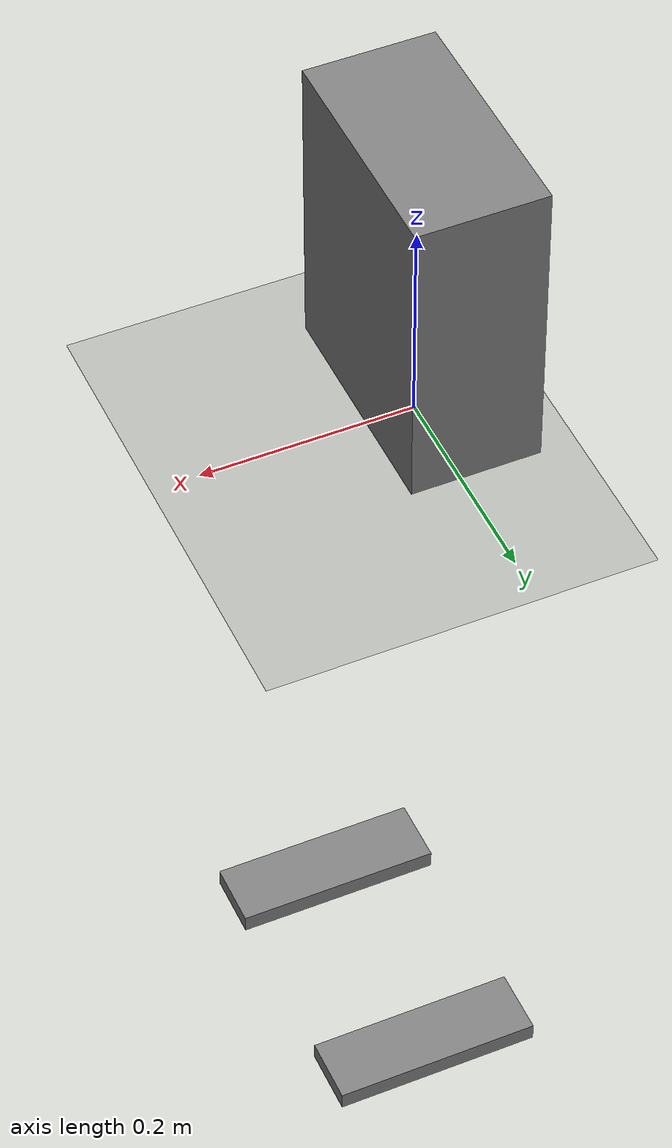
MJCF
<mujoco model="MuJoCo Model">
  <compiler angle="radian"/>

  <option timestep="0.01" gravity="0 0 -9.81" iterations="20" ls_iterations="10"/>

  <default>
    <geom friction="1 0.5 0.001" solref="0.01"/>
  </default>

  <worldbody>
    <geom name="plane_3" size="5 5 5" type="plane" contype="16" conaffinity="2147483631" friction="0.75 0.375 0.00075"/>
    <body name="/g1/pelvis">
      <inertial pos="0 0 -0.07605" quat="1 0 -0.000405289 0" mass="2.86" diaginertia="0.00791431 0.0069837 0.0059404"/>
      <joint name="joint_1" type="free" limited="false" actuatorfrclimited="false"/>
      <body name="/g1/left_hip_pitch_link" pos="0 0.06445 -0.1027" quat="0.984807 0 -0.17365 0">
        <inertial pos="0.001962 0.049392 -0.000941" quat="0.420735 0.907025 -0.0155675 -0.00670647" mass="1.299" diaginertia="0.00138785 0.000955478 0.00086947"/>
        <joint name="/g1/pelvis/left_hip_pitch_joint" pos="0 0 0" axis="0 1 0" limited="true" range="-2.35 3.05" armature="0.1"/>
        <body name="/g1/left_hip_roll_link" pos="0 0.0523 0">
          <inertial pos="0.024757 -0.001036 -0.086323" quat="0.977498 -0.00692637 0.210181 0.0165269" mass="1.446" diaginertia="0.00244106 0.00230425 0.00142899"/>
          <joint name="/g1/left_hip_pitch_link/left_hip_roll_joint" pos="0 0 0" axis="1 0 0" limited="true" range="-0.26 2.53" armature="0.1"/>
          <body name="/g1/left_hip_yaw_link" pos="0.01966 -0.0012139 -0.1241">
            <inertial pos="-0.053554 -0.011477 -0.14067" quat="0.645098 0.15885 0.202109 0.71956" mass="2.052" diaginertia="0.0114476 0.0107868 0.00214501"/>
            <joint name="/g1/left_hip_roll_link/left_hip_yaw_joint" pos="0 0 0" axis="0 0 1" limited="true" range="-2.75 2.75" armature="0.1"/>
            <body name="/g1/left_knee_link" pos="-0.078292 -0.0017335 -0.177225" quat="0.967714 0 0.252052 0">
              <inertial pos="0.005505 0.006534 -0.116629" quat="0.799234 -0.0128893 0.0354278 0.599837" mass="2.252" diaginertia="0.0127418 0.0124382 0.00192524"/>
              <joint name="/g1/left_hip_yaw_link/left_knee_joint" pos="0 0 0" axis="0 1 0" limited="true" range="-0.33489 2.5449" armature="0.1"/>
              <body name="/g1/left_ankle_pitch_link" pos="0 0.0040687 -0.30007" quat="0.99678 0 -0.0801788 0">
                <inertial pos="-0.007269 0 0.011137" quat="0.603053 0.369225 0.369225 0.603053" mass="0.074" diaginertia="1.89e-05 1.40805e-05 6.9195e-06"/>
                <joint name="/g1/left_knee_link/left_ankle_pitch_joint" pos="0 0 0" axis="0 1 0" limited="true" range="-0.68 0.73" armature="0.1"/>
                <body name="/g1/left_ankle_roll_link" pos="0 0 -0.017558">
                  <inertial pos="0.024762 2e-05 -0.012526" quat="0.000771336 0.734476 0.000921293 0.678634" mass="0.391" diaginertia="0.00110394 0.0010657 0.000149255"/>
                  <joint name="/g1/left_ankle_pitch_link/left_ankle_roll_joint" pos="0 0 0" axis="1 0 0" limited="true" range="-0.2618 0.2618" armature="0.1"/>
                  <geom name="box_0" size="0.101555 0.0327346 0.00925394" pos="0.035917 0 -0.0251701" type="box" contype="2" conaffinity="2147483645" friction="0.75 0.375 0.00075"/>
                </body>
              </body>
            </body>
          </body>
        </body>
      </body>
      <body name="/g1/pelvis_contour_link">
        <inertial pos="0 0 0" mass="1e-06" diaginertia="1e-05 1e-05 1e-05"/>
      </body>
      <body name="/g1/right_hip_pitch_link" pos="0 -0.06445 -0.1027" quat="0.984807 0 -0.17365 0">
        <inertial pos="0.001962 -0.049392 -0.000941" quat="0.907025 0.420735 0.00670647 0.0155675" mass="1.299" diaginertia="0.00138785 0.000955478 0.00086947"/>
        <joint name="/g1/pelvis/right_hip_pitch_joint" pos="0 0 0" axis="0 1 0" limited="true" range="-2.35 3.05" armature="0.1"/>
        <body name="/g1/right_hip_roll_link" pos="0 -0.0523 0">
          <inertial pos="0.024757 0.001036 -0.086323" quat="0.977498 0.00692637 0.210181 -0.0165269" mass="1.446" diaginertia="0.00244106 0.00230425 0.00142899"/>
          <joint name="/g1/right_hip_pitch_link/right_hip_roll_joint" pos="0 0 0" axis="1 0 0" limited="true" range="-2.53 0.26" armature="0.1"/>
          <body name="/g1/right_hip_yaw_link" pos="0.01966 0.0012139 -0.1241">
            <inertial pos="-0.053554 0.011477 -0.14067" quat="0.71956 0.202109 0.15885 0.645098" mass="2.052" diaginertia="0.0114476 0.0107868 0.00214501"/>
            <joint name="/g1/right_hip_roll_link/right_hip_yaw_joint" pos="0 0 0" axis="0 0 1" limited="true" range="-2.75 2.75" armature="0.1"/>
            <body name="/g1/right_knee_link" pos="-0.078292 0.0017335 -0.177225" quat="0.967714 0 0.252052 0">
              <inertial pos="0.005505 -0.006534 -0.116629" quat="0.599837 0.0354278 -0.0128893 0.799234" mass="2.252" diaginertia="0.0127418 0.0124382 0.00192524"/>
              <joint name="/g1/right_hip_yaw_link/right_knee_joint" pos="0 0 0" axis="0 1 0" limited="true" range="-0.33489 2.5449" armature="0.1"/>
              <body name="/g1/right_ankle_pitch_link" pos="0 -0.0040687 -0.30007" quat="0.99678 0 -0.0801788 0">
                <inertial pos="-0.007269 0 0.011137" quat="0.603053 0.369225 0.369225 0.603053" mass="0.074" diaginertia="1.89e-05 1.40805e-05 6.9195e-06"/>
                <joint name="/g1/right_knee_link/right_ankle_pitch_joint" pos="0 0 0" axis="0 1 0" limited="true" range="-0.68 0.73" armature="0.1"/>
                <body name="/g1/right_ankle_roll_link" pos="0 0 -0.017558">
                  <inertial pos="0.024762 -2e-05 -0.012526" quat="-0.000771336 0.734476 -0.000921293 0.678634" mass="0.391" diaginertia="0.00110394 0.0010657 0.000149255"/>
                  <joint name="/g1/right_ankle_pitch_link/right_ankle_roll_joint" pos="0 0 0" axis="1 0 0" limited="true" range="-0.2618 0.2618" armature="0.1"/>
                  <geom name="box_1" size="0.101555 0.0327346 0.00925394" pos="0.035917 0 -0.0251701" type="box" contype="4" conaffinity="2147483643" friction="0.75 0.375 0.00075"/>
                </body>
              </body>
            </body>
          </body>
        </body>
      </body>
      <body name="/g1/torso_link">
        <inertial pos="0.00197122 0.00266902 0.169365" quat="0.999768 0.0170278 -0.0129458 -0.00253532" mass="6.3396" diaginertia="0.0603895 0.0435628 0.03337"/>
        <joint name="/g1/pelvis/torso_joint" pos="0 0 0" axis="0 0 1" limited="true" range="-2.618 2.618" armature="0.1"/>
        <geom name="box_2" size="0.144879 0.110109 0.06" pos="-0.00620253 0 0.164763" quat="0.707107 0 -0.707107 0" type="box" contype="8" conaffinity="2147483639" friction="0.75 0.375 0.00075"/>
        <body name="/g1/head_link">
          <inertial pos="0.00138067 0.000284309 0.420342" quat="0.721034 -0.0299186 -0.0339443 0.691421" mass="1.17977" diaginertia="0.00552903 0.00546359 0.00162239"/>
        </body>
        <body name="/g1/imu_link" pos="-0.0423387 0.00166 0.152067">
          <inertial pos="0 0 0" mass="1e-06" diaginertia="1e-05 1e-05 1e-05"/>
        </body>
        <body name="/g1/left_shoulder_pitch_link" pos="-0.0025 0.10396 0.25928" quat="0.990268 0.139172 0 0">
          <inertial pos="-0.001431 0.048811 0.001304" quat="0.786417 0.588396 -0.180543 0.0523637" mass="0.713" diaginertia="0.000466421 0.000440181 0.000410999"/>
          <joint name="/g1/torso_link/left_shoulder_pitch_joint" pos="0 0 0" axis="0 1 0" limited="true" range="-2.9671 2.7925" armature="0.1"/>
          <body name="/g1/left_shoulder_roll_link" pos="0 0.052 0" quat="0.990268 -0.139172 0 0">
            <inertial pos="-0.003415 0.006955 -0.064598" quat="0.70683 0.0105364 0.00575207 0.707282" mass="0.642" diaginertia="0.000683515 0.000616029 0.000372857"/>
            <joint name="/g1/left_shoulder_pitch_link/left_shoulder_roll_joint" pos="0 0 0" axis="1 0 0" limited="true" range="-1.5882 2.2515" armature="0.1"/>
            <body name="/g1/left_shoulder_yaw_link" pos="-0.00354 0.0062424 -0.1032">
              <inertial pos="0.000375 -0.00444 -0.072374" quat="0.903833 -0.0374183 0.00985487 0.426131" mass="0.713" diaginertia="0.000977873 0.000964661 0.000379065"/>
              <joint name="/g1/left_shoulder_roll_link/left_shoulder_yaw_joint" pos="0 0 0" axis="0 0 1" limited="true" range="-2.618 2.618" armature="0.1"/>
              <body name="/g1/left_elbow_pitch_link" pos="0 0.00189 -0.0855">
                <inertial pos="0.064497 0.002873 0" quat="0.582347 0.582495 0.400893 0.401069" mass="0.601" diaginertia="0.00049549 0.0004712 0.00025371"/>
                <joint name="/g1/left_shoulder_yaw_link/left_elbow_pitch_joint" pos="0 0 0" axis="0 1 0" limited="true" range="-0.2268 3.4208" armature="0.1"/>
                <body name="/g1/left_elbow_roll_link" pos="0.1 0 0">
                  <inertial pos="0.081811 0.001454 0.001" quat="0.459015 0.526978 0.453199 0.553363" mass="0.227" diaginertia="0.000977534 0.000968326 0.00010804"/>
                  <joint name="/g1/left_elbow_pitch_link/left_elbow_roll_joint" pos="0 0 0" axis="1 0 0" limited="true" range="-2.0943 2.0943" armature="0.1"/>
                  <body name="/g1/left_palm_link" pos="0.12 0 0" quat="0.707107 0 0.707107 0">
                    <inertial pos="0.0557842 0.00148509 -0.000326701" quat="0.48386 0.491643 0.516022 0.507826" mass="0.28126" diaginertia="0.000311158 0.000189397 0.000176062"/>
                    <body name="/g1/left_five_link" pos="0.02395 0.004 0.085" quat="0.707107 0 -0.707107 0">
                      <inertial pos="0.0362561 -0.0015725 0.000269899" quat="0.540443 0.459072 0.5397 0.45376" mass="0.0488469" diaginertia="8.91743e-06 8.64874e-06 3.8319e-06"/>
                      <joint name="/g1/left_palm_link/left_five_joint" pos="0 0 0" axis="0 0 1" limited="true" range="-1.84 0.3" armature="0.1"/>
                      <body name="/g1/left_six_link" pos="0.0471 -0.0036 0">
                        <inertial pos="0.0237591 0.00135257 0.000119669" quat="0.478926 0.48905 0.526348 0.504399" mass="0.0138583" diaginertia="2.55338e-06 2.04399e-06 9.3995e-07"/>
                        <joint name="/g1/left_five_link/left_six_joint" pos="0 0 0" axis="0 0 1" limited="true" range="-1.84 0" armature="0.1"/>
                      </body>
                    </body>
                    <body name="/g1/left_three_link" pos="-0.02395 0.004 0.085" quat="0.707107 0 -0.707107 0">
                      <inertial pos="0.0362561 -0.0015725 0.000269899" quat="0.540443 0.459072 0.5397 0.45376" mass="0.0488469" diaginertia="8.91743e-06 8.64874e-06 3.8319e-06"/>
                      <joint name="/g1/left_palm_link/left_three_joint" pos="0 0 0" axis="0 0 1" limited="true" range="-1.84 0.3" armature="0.1"/>
                      <body name="/g1/left_four_link" pos="0.0471 -0.0036 0">
                        <inertial pos="0.0237591 0.00135257 0.000119669" quat="0.478926 0.48905 0.526348 0.504399" mass="0.0138583" diaginertia="2.55338e-06 2.04399e-06 9.3995e-07"/>
                        <joint name="/g1/left_three_link/left_four_joint" pos="0 0 0" axis="0 0 1" limited="true" range="-1.84 0" armature="0.1"/>
                      </body>
                    </body>
                    <body name="/g1/left_zero_link" pos="5.96046e-09 0 0.05" quat="0.707107 0 -0.707107 0">
                      <inertial pos="-0.0260466 -0.00877511 1.08605e-05" quat="0.59241 0.381376 -0.592953 0.389884" mass="0.0509893" diaginertia="8.68048e-06 7.23365e-06 4.58058e-06"/>
                      <joint name="/g1/left_palm_link/left_zero_joint" pos="0 0 0" axis="0 1 0" limited="true" range="-0.523598 0.523598" armature="0.1"/>
                      <body name="/g1/left_one_link" pos="-0.026525 -0.0188 -5e-05">
                        <inertial pos="-0.00181538 -0.0327057 -0.000185871" quat="0.701646 0.698199 0.081782 -0.116288" mass="0.047762" diaginertia="8.03052e-06 7.8455e-06 3.65282e-06"/>
                        <joint name="/g1/left_zero_link/left_one_joint" pos="0 0 0" axis="0 0 1" limited="true" range="-1 1.2" armature="0.1"/>
                        <body name="/g1/left_two_link" pos="0 -0.0431 0">
                          <inertial pos="-0.00135257 -0.0237591 -0.000119669" quat="0.717995 0.695316 -0.0180122 -0.0263741" mass="0.0138583" diaginertia="2.55338e-06 2.04399e-06 9.3995e-07"/>
                          <joint name="/g1/left_one_link/left_two_joint" pos="0 0 0" axis="0 0 1" limited="true" range="0 1.84" armature="0.1"/>
                        </body>
                      </body>
                    </body>
                  </body>
                </body>
              </body>
            </body>
          </body>
        </body>
        <body name="/g1/logo_link">
          <inertial pos="-0.00306556 5.62503e-05 0.245265" quat="0.00498408 0.708708 -0.00396294 0.705473" mass="0.001" diaginertia="6.88624e-06 6.44935e-06 8.95487e-07"/>
        </body>
        <body name="/g1/right_shoulder_pitch_link" pos="-0.0025 -0.10396 0.25928" quat="0.990268 -0.139172 0 0">
          <inertial pos="-0.001431 -0.048811 0.001304" quat="0.588396 0.786417 -0.0523637 0.180543" mass="0.713" diaginertia="0.000466421 0.000440181 0.000410999"/>
          <joint name="/g1/torso_link/right_shoulder_pitch_joint" pos="0 0 0" axis="0 1 0" limited="true" range="-2.9671 2.7925" armature="0.1"/>
          <body name="/g1/right_shoulder_roll_link" pos="0 -0.052 0" quat="0.990268 0.139172 0 0">
            <inertial pos="-0.003415 -0.006955 -0.064598" quat="0.707282 0.00575207 0.0105364 0.70683" mass="0.642" diaginertia="0.000683515 0.000616029 0.000372857"/>
            <joint name="/g1/right_shoulder_pitch_link/right_shoulder_roll_joint" pos="0 0 0" axis="1 0 0" limited="true" range="-2.2515 1.5882" armature="0.1"/>
            <body name="/g1/right_shoulder_yaw_link" pos="-0.00354 -0.0062424 -0.1032">
              <inertial pos="0.000375 0.00444 -0.072374" quat="0.426131 0.00985487 -0.0374183 0.903833" mass="0.713" diaginertia="0.000977873 0.000964661 0.000379065"/>
              <joint name="/g1/right_shoulder_roll_link/right_shoulder_yaw_joint" pos="0 0 0" axis="0 0 1" limited="true" range="-2.618 2.618" armature="0.1"/>
              <body name="/g1/right_elbow_pitch_link" pos="0 -0.00189 -0.0855">
                <inertial pos="0.064497 -0.002873 0" quat="0.401069 0.400893 0.582495 0.582347" mass="0.601" diaginertia="0.00049549 0.0004712 0.00025371"/>
                <joint name="/g1/right_shoulder_yaw_link/right_elbow_pitch_joint" pos="0 0 0" axis="0 1 0" limited="true" range="-0.2268 3.4208" armature="0.1"/>
                <body name="/g1/right_elbow_roll_link" pos="0.1 0 0">
                  <inertial pos="0.081811 -0.001454 0.001" quat="0.553363 0.453199 0.526978 0.459015" mass="0.227" diaginertia="0.000977534 0.000968326 0.00010804"/>
                  <joint name="/g1/right_elbow_pitch_link/right_elbow_roll_joint" pos="0 0 0" axis="1 0 0" limited="true" range="-2.0943 2.0943" armature="0.1"/>
                  <body name="/g1/right_palm_link" pos="0.12 0 0" quat="0.707107 0 0.707107 0">
                    <inertial pos="0.0557842 -0.00148509 -0.000326701" quat="0.507826 0.516022 0.491643 0.48386" mass="0.28126" diaginertia="0.000311158 0.000189397 0.000176062"/>
                    <body name="/g1/right_five_link" pos="0.02395 -0.004 0.085" quat="0.707107 0 -0.707107 0">
                      <inertial pos="0.0362561 0.0015725 0.000269899" quat="0.45376 0.5397 0.459072 0.540443" mass="0.0488469" diaginertia="8.91743e-06 8.64874e-06 3.8319e-06"/>
                      <joint name="/g1/right_palm_link/right_five_joint" pos="0 0 0" axis="0 0 1" limited="true" range="-0.3 1.84" armature="0.1"/>
                      <body name="/g1/right_six_link" pos="0.0471 0.0036 0">
                        <inertial pos="0.0237591 -0.00135257 0.000119669" quat="0.504399 0.526348 0.48905 0.478926" mass="0.0138583" diaginertia="2.55338e-06 2.04399e-06 9.3995e-07"/>
                        <joint name="/g1/right_five_link/right_six_joint" pos="0 0 0" axis="0 0 1" limited="true" range="0 1.84" armature="0.1"/>
                      </body>
                    </body>
                    <body name="/g1/right_three_link" pos="-0.02395 -0.004 0.085" quat="0.707107 0 -0.707107 0">
                      <inertial pos="0.0362561 0.0015725 0.000269899" quat="0.45376 0.5397 0.459072 0.540443" mass="0.0488469" diaginertia="8.91743e-06 8.64874e-06 3.8319e-06"/>
                      <joint name="/g1/right_palm_link/right_three_joint" pos="0 0 0" axis="0 0 1" limited="true" range="-0.3 1.84" armature="0.1"/>
                      <body name="/g1/right_four_link" pos="0.0471 0.0036 0">
                        <inertial pos="0.0237591 -0.00135257 0.000119669" quat="0.504399 0.526348 0.48905 0.478926" mass="0.0138583" diaginertia="2.55338e-06 2.04399e-06 9.3995e-07"/>
                        <joint name="/g1/right_three_link/right_four_joint" pos="0 0 0" axis="0 0 1" limited="true" range="0 1.84" armature="0.1"/>
                      </body>
                    </body>
                    <body name="/g1/right_zero_link" pos="5.96046e-09 0 0.05" quat="0.707107 0 -0.707107 0">
                      <inertial pos="-0.0260466 0.00877511 1.08605e-05" quat="0.381376 0.59241 -0.389884 0.592953" mass="0.0509893" diaginertia="8.68048e-06 7.23365e-06 4.58058e-06"/>
                      <joint name="/g1/right_palm_link/right_zero_joint" pos="0 0 0" axis="0 1 0" limited="true" range="-0.523598 0.523598" armature="0.1"/>
                      <body name="/g1/right_one_link" pos="-0.026525 0.0188 -5e-05">
                        <inertial pos="-0.00181538 0.0327057 -0.000185871" quat="0.698199 0.701646 0.116288 -0.081782" mass="0.047762" diaginertia="8.03052e-06 7.8455e-06 3.65282e-06"/>
                        <joint name="/g1/right_zero_link/right_one_joint" pos="0 0 0" axis="0 0 1" limited="true" range="-1.2 1" armature="0.1"/>
                        <body name="/g1/right_two_link" pos="0 0.0431 0">
                          <inertial pos="-0.00135257 0.0237591 -0.000119669" quat="0.695316 0.717995 0.0263741 0.0180122" mass="0.0138583" diaginertia="2.55338e-06 2.04399e-06 9.3995e-07"/>
                          <joint name="/g1/right_one_link/right_two_joint" pos="0 0 0" axis="0 0 1" limited="true" range="-1.84 0" armature="0.1"/>
                        </body>
                      </body>
                    </body>
                  </body>
                </body>
              </body>
            </body>
          </body>
        </body>
      </body>
    </body>
  </worldbody>

  <actuator>
    <general joint="/g1/pelvis/left_hip_pitch_joint" forcerange="-1000000 1000000" biastype="affine" gainprm="200" biasprm="0 -200 -5"/>
    <general joint="/g1/left_hip_pitch_link/left_hip_roll_joint" forcerange="-1000000 1000000" biastype="affine" gainprm="150" biasprm="0 -150 -5"/>
    <general joint="/g1/left_hip_roll_link/left_hip_yaw_joint" forcerange="-1000000 1000000" biastype="affine" gainprm="150" biasprm="0 -150 -5"/>
    <general joint="/g1/left_hip_yaw_link/left_knee_joint" forcerange="-1000000 1000000" biastype="affine" gainprm="200" biasprm="0 -200 -5"/>
    <general joint="/g1/left_knee_link/left_ankle_pitch_joint" forcerange="-1000000 1000000" biastype="affine" gainprm="20" biasprm="0 -20 -2"/>
    <general joint="/g1/left_ankle_pitch_link/left_ankle_roll_joint" forcerange="-1000000 1000000" biastype="affine" gainprm="20" biasprm="0 -20 -2"/>
    <general joint="/g1/pelvis/right_hip_pitch_joint" forcerange="-1000000 1000000" biastype="affine" gainprm="200" biasprm="0 -200 -5"/>
    <general joint="/g1/right_hip_pitch_link/right_hip_roll_joint" forcerange="-1000000 1000000" biastype="affine" gainprm="150" biasprm="0 -150 -5"/>
    <general joint="/g1/right_hip_roll_link/right_hip_yaw_joint" forcerange="-1000000 1000000" biastype="affine" gainprm="150" biasprm="0 -150 -5"/>
    <general joint="/g1/right_hip_yaw_link/right_knee_joint" forcerange="-1000000 1000000" biastype="affine" gainprm="200" biasprm="0 -200 -5"/>
    <general joint="/g1/right_knee_link/right_ankle_pitch_joint" forcerange="-1000000 1000000" biastype="affine" gainprm="20" biasprm="0 -20 -2"/>
    <general joint="/g1/right_ankle_pitch_link/right_ankle_roll_joint" forcerange="-1000000 1000000" biastype="affine" gainprm="20" biasprm="0 -20 -2"/>
    <general joint="/g1/pelvis/torso_joint" forcerange="-1000000 1000000" biastype="affine" gainprm="200" biasprm="0 -200 -5"/>
    <general joint="/g1/torso_link/left_shoulder_pitch_joint" forcerange="-1000000 1000000" biastype="affine" gainprm="40" biasprm="0 -40 -10"/>
    <general joint="/g1/left_shoulder_pitch_link/left_shoulder_roll_joint" forcerange="-1000000 1000000" biastype="affine" gainprm="40" biasprm="0 -40 -10"/>
    <general joint="/g1/left_shoulder_roll_link/left_shoulder_yaw_joint" forcerange="-1000000 1000000" biastype="affine" gainprm="40" biasprm="0 -40 -10"/>
    <general joint="/g1/left_shoulder_yaw_link/left_elbow_pitch_joint" forcerange="-1000000 1000000" biastype="affine" gainprm="40" biasprm="0 -40 -10"/>
    <general joint="/g1/left_elbow_pitch_link/left_elbow_roll_joint" forcerange="-1000000 1000000" biastype="affine" gainprm="40" biasprm="0 -40 -10"/>
    <general joint="/g1/left_palm_link/left_five_joint" forcerange="-1000000 1000000" biastype="affine" gainprm="40" biasprm="0 -40 -10"/>
    <general joint="/g1/left_five_link/left_six_joint" forcerange="-1000000 1000000" biastype="affine" gainprm="40" biasprm="0 -40 -10"/>
    <general joint="/g1/left_palm_link/left_three_joint" forcerange="-1000000 1000000" biastype="affine" gainprm="40" biasprm="0 -40 -10"/>
    <general joint="/g1/left_three_link/left_four_joint" forcerange="-1000000 1000000" biastype="affine" gainprm="40" biasprm="0 -40 -10"/>
    <general joint="/g1/left_palm_link/left_zero_joint" forcerange="-1000000 1000000" biastype="affine" gainprm="40" biasprm="0 -40 -10"/>
    <general joint="/g1/left_zero_link/left_one_joint" forcerange="-1000000 1000000" biastype="affine" gainprm="40" biasprm="0 -40 -10"/>
    <general joint="/g1/left_one_link/left_two_joint" forcerange="-1000000 1000000" biastype="affine" gainprm="40" biasprm="0 -40 -10"/>
    <general joint="/g1/torso_link/right_shoulder_pitch_joint" forcerange="-1000000 1000000" biastype="affine" gainprm="40" biasprm="0 -40 -10"/>
    <general joint="/g1/right_shoulder_pitch_link/right_shoulder_roll_joint" forcerange="-1000000 1000000" biastype="affine" gainprm="40" biasprm="0 -40 -10"/>
    <general joint="/g1/right_shoulder_roll_link/right_shoulder_yaw_joint" forcerange="-1000000 1000000" biastype="affine" gainprm="40" biasprm="0 -40 -10"/>
    <general joint="/g1/right_shoulder_yaw_link/right_elbow_pitch_joint" forcerange="-1000000 1000000" biastype="affine" gainprm="40" biasprm="0 -40 -10"/>
    <general joint="/g1/right_elbow_pitch_link/right_elbow_roll_joint" forcerange="-1000000 1000000" biastype="affine" gainprm="40" biasprm="0 -40 -10"/>
    <general joint="/g1/right_palm_link/right_five_joint" forcerange="-1000000 1000000" biastype="affine" gainprm="40" biasprm="0 -40 -10"/>
    <general joint="/g1/right_five_link/right_six_joint" forcerange="-1000000 1000000" biastype="affine" gainprm="40" biasprm="0 -40 -10"/>
    <general joint="/g1/right_palm_link/right_three_joint" forcerange="-1000000 1000000" biastype="affine" gainprm="40" biasprm="0 -40 -10"/>
    <general joint="/g1/right_three_link/right_four_joint" forcerange="-1000000 1000000" biastype="affine" gainprm="40" biasprm="0 -40 -10"/>
    <general joint="/g1/right_palm_link/right_zero_joint" forcerange="-1000000 1000000" biastype="affine" gainprm="40" biasprm="0 -40 -10"/>
    <general joint="/g1/right_zero_link/right_one_joint" forcerange="-1000000 1000000" biastype="affine" gainprm="40" biasprm="0 -40 -10"/>
    <general joint="/g1/right_one_link/right_two_joint" forcerange="-1000000 1000000" biastype="affine" gainprm="40" biasprm="0 -40 -10"/>
  </actuator>
</mujoco>
